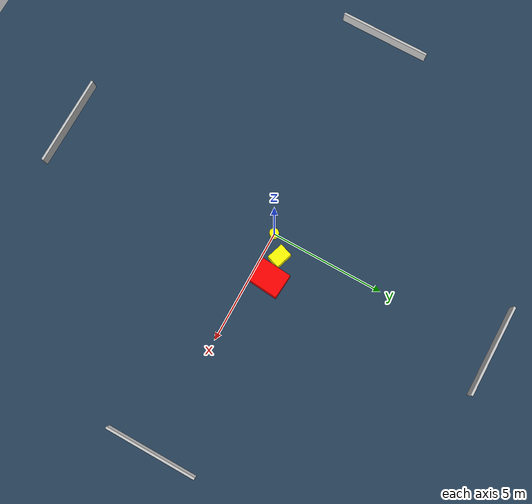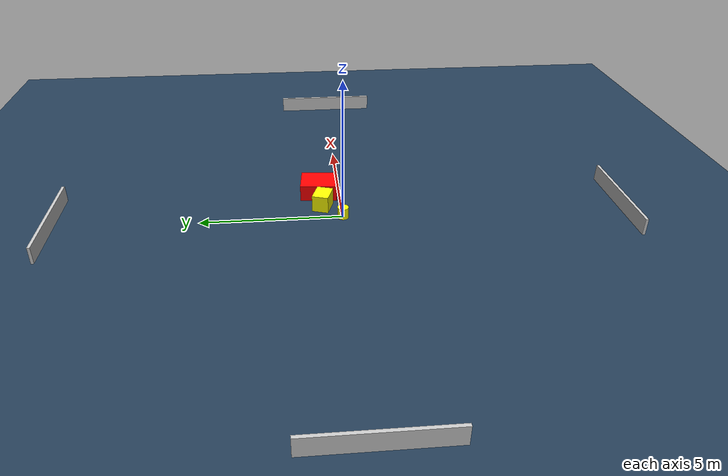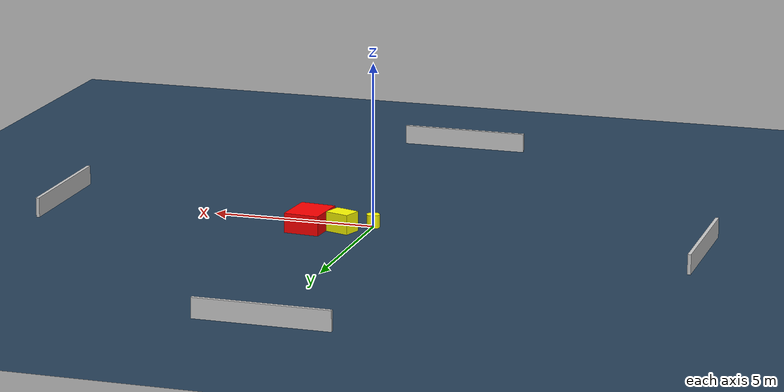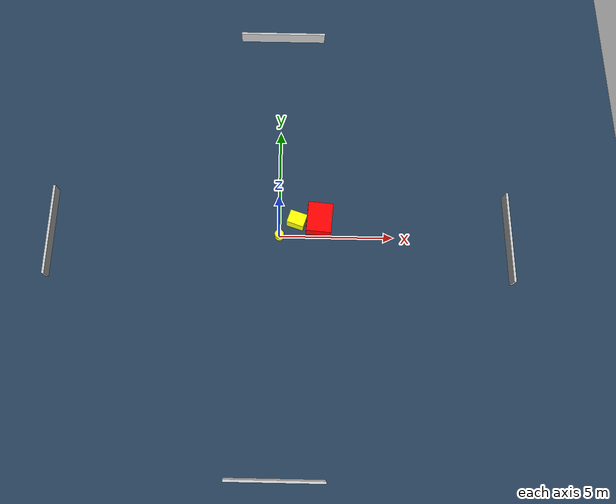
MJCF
<?xml version="1.0" ?>
<mujoco model="generated_environment">
  <option timestep="0.01" integrator="RK4" cone="elliptic"/>
  <default>
    <geom density="1"/>
  </default>
  <asset>
    <texture builtin="gradient" height="3072" name="skybox" rgb1="0.3 0.5 0.7" rgb2="0 0 0" type="skybox" width="512"/>
    <texture builtin="checker" height="300" name="groundplane" rgb1="0.2 0.3 0.4" rgb2="0.1 0.2 0.3" type="2d" width="300"/>
    <material name="groundplane" reflectance="0.2" texrepeat="5 5" texture="groundplane"/>
  </asset>
  <worldbody>
    <light dir="0 0 -1" directional="true" pos="0 0 1.5"/>
    <geom condim="3" friction="0.5 0.005 0.001" material="groundplane" name="floor" pos="0 0 0" size="0 0 0.05" type="plane"/>
    <body name="walls">
      <geom name="wall_1" condim="4" pos="-10.0 0.0 0.3" rgba="0.800000011920929 0.800000011920929 0.800000011920929 1.0" size="0.05 2.0 0.3" type="box"/>
      <geom name="wall_2" condim="4" pos="10.0 0.0 0.3" rgba="0.800000011920929 0.800000011920929 0.800000011920929 1.0" size="0.05 2.0 0.3" type="box"/>
      <geom name="wall_3" condim="4" pos="0.0 -10.0 0.3" rgba="0.800000011920929 0.800000011920929 0.800000011920929 1.0" size="2.0 0.05 0.3" type="box"/>
      <geom name="wall_4" condim="4" pos="0.0 10.0 0.3" rgba="0.800000011920929 0.800000011920929 0.800000011920929 1.0" size="2.0 0.05 0.3" type="box"/>
    </body>
    <body name="robot">
      <joint name="joint_x" type="slide" pos="0 0 0" axis="1 0 0"/>
      <joint name="joint_y" type="slide" pos="0 0 0" axis="0 1 0"/>
      <geom name="robot" type="cylinder" pos="0.0 0.0 0.2" size="0.2 0.2 0.0" mass="5.0" friction="1.0 0.005 0.0001" condim="4" rgba="1.0 1.0 0.0 1.0"/>
    </body>
    <body name="obstacle_1_movable">
      <geom name="obstacle_1_movable" condim="4" pos="0.759321926112302 0.669155567864881 0.3" euler="0 0 71.6522119208233" friction="0.0 0.005 0.001" rgba="1.0 1.0 0.0 1.0" size="0.2915948884976034 0.3782763542105051 0.3" type="box" mass="0.1"/>
      <joint type="free"/>
    </body>
    <body name="obstacle_2_static">
      <geom name="obstacle_2_static" condim="4" pos="1.7500116185189636 0.7459621064374891 0.3" euler="0 0 265.26277390479976" friction="0.0 0.005 0.001" rgba="1.0 0.0 0.0 1.0" size="0.6629481982459221 0.5403659810563872 0.3" type="box"/>
    </body>
  </worldbody>
  <actuator>
    <motor name="actuator_x" joint="joint_x" gear="1" ctrlrange="-1 1"/>
    <motor name="actuator_y" joint="joint_y" gear="1" ctrlrange="-1 1"/>
  </actuator>
</mujoco>
